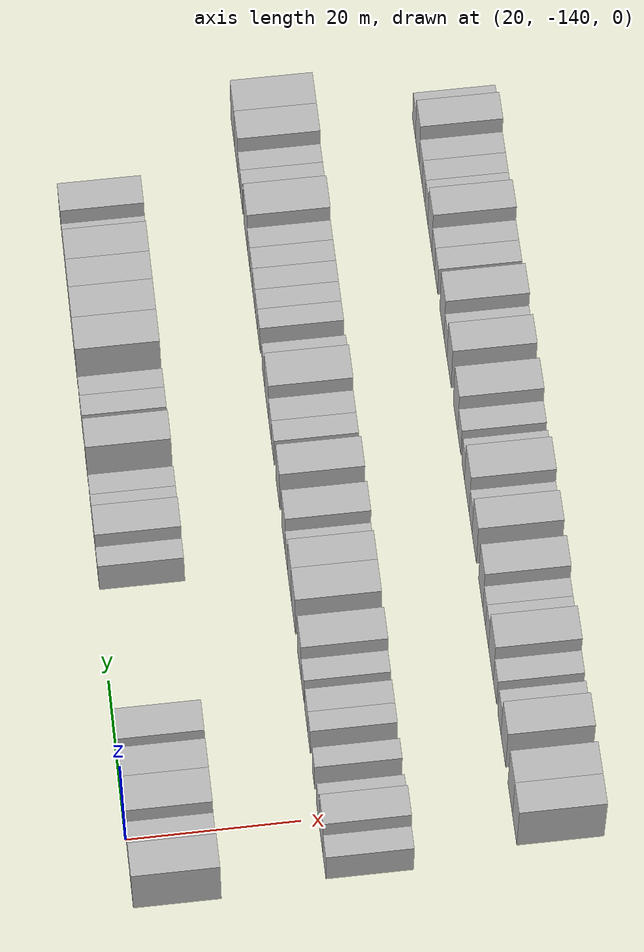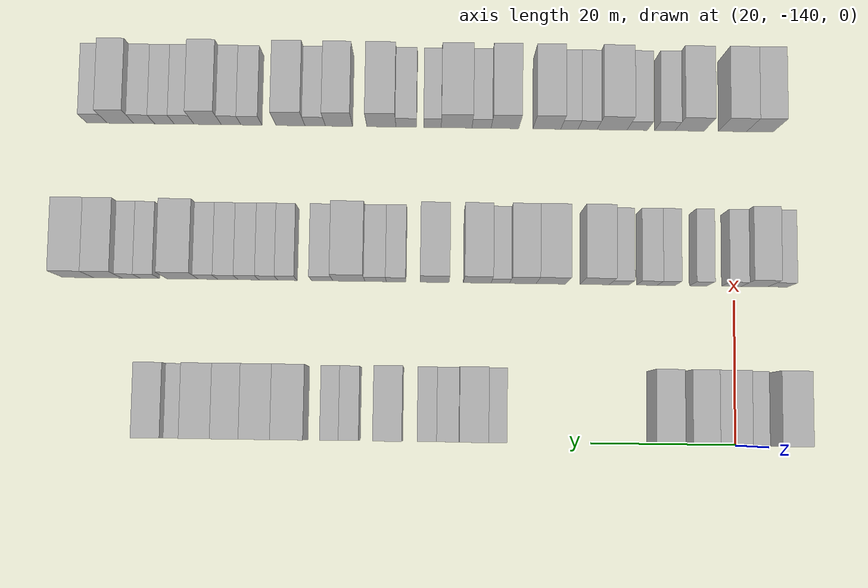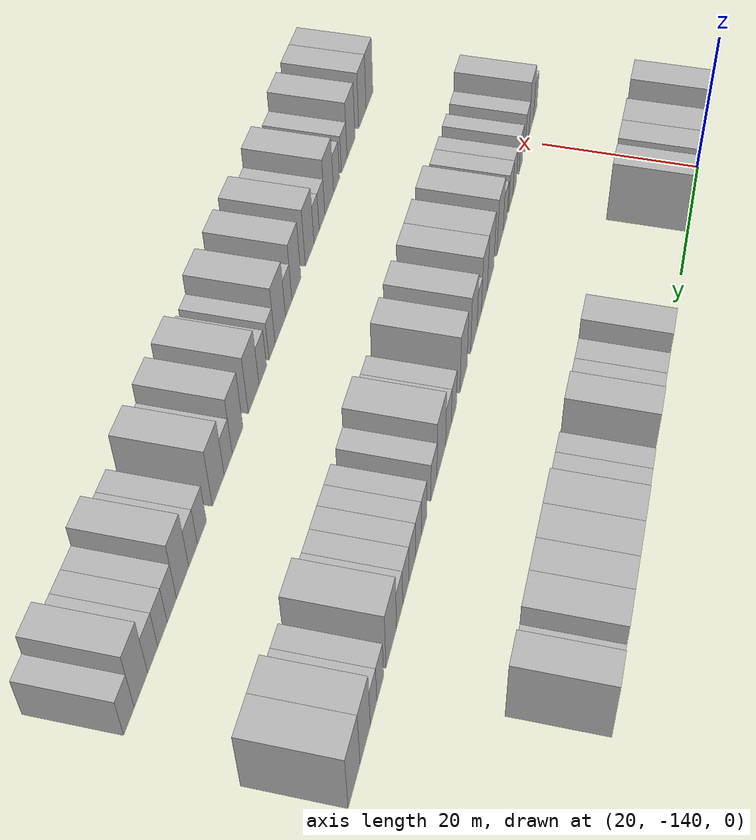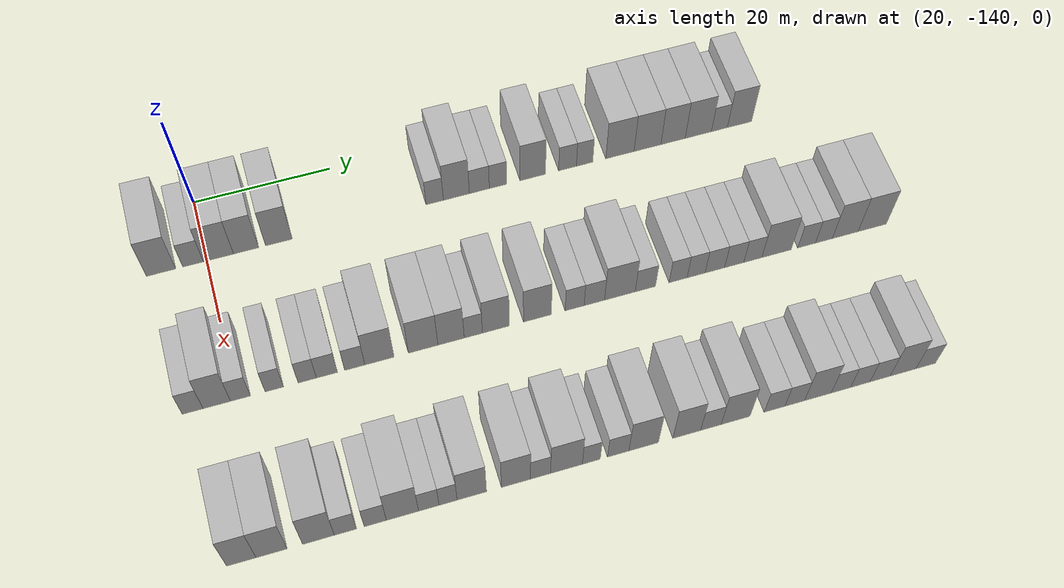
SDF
<sdf version="1.6">
 <world name="default">
  <model name="building_19">
   <static>1</static>
   <pose>25.0000 -146.4333 0 0.000000 0.000000 0.000000</pose>
   <link name="link">
    <pose>0 0 4.50 0 0 0</pose>
    <collision name="collision"><geometry><box><size>10.0000 4.1282 9.0000</size></box></geometry></collision>
    <visual name="visual">
     <cast_shadows>0</cast_shadows>
     <geometry><box><size>10.0000 4.1282 9.0000</size></box></geometry>
     <material>
      <script>
       <uri>model://HANNAS_wall/materials/scripts</uri>
       <uri>model://HANNAS_wall/materials/textures</uri>
       <name>vrc/HANNAS_wall</name>
      </script>
     </material>
    </visual>
   </link>
  </model>
  <model name="building_20">
   <static>1</static>
   <pose>25.0000 -141.9119 0 0.000000 0.000000 0.000000</pose>
   <link name="link">
    <pose>0 0 3.00 0 0 0</pose>
    <collision name="collision"><geometry><box><size>10.0000 2.9148 6.0000</size></box></geometry></collision>
    <visual name="visual">
     <cast_shadows>0</cast_shadows>
     <geometry><box><size>10.0000 2.9148 6.0000</size></box></geometry>
     <material>
      <script>
       <uri>model://HANNAS_wall/materials/scripts</uri>
       <uri>model://HANNAS_wall/materials/textures</uri>
       <name>vrc/HANNAS_wall</name>
      </script>
     </material>
    </visual>
   </link>
  </model>
  <model name="building_21">
   <static>1</static>
   <pose>25.0000 -138.3093 0 0.000000 0.000000 0.000000</pose>
   <link name="link">
    <pose>0 0 4.50 0 0 0</pose>
    <collision name="collision"><geometry><box><size>10.0000 4.2903 9.0000</size></box></geometry></collision>
    <visual name="visual">
     <cast_shadows>0</cast_shadows>
     <geometry><box><size>10.0000 4.2903 9.0000</size></box></geometry>
     <material>
      <script>
       <uri>model://HANNAS_wall/materials/scripts</uri>
       <uri>model://HANNAS_wall/materials/textures</uri>
       <name>vrc/HANNAS_wall</name>
      </script>
     </material>
    </visual>
   </link>
  </model>
  <model name="building_22">
   <static>1</static>
   <pose>25.0000 -134.3627 0 0.000000 0.000000 0.000000</pose>
   <link name="link">
    <pose>0 0 4.50 0 0 0</pose>
    <collision name="collision"><geometry><box><size>10.0000 3.6030 9.0000</size></box></geometry></collision>
    <visual name="visual">
     <cast_shadows>0</cast_shadows>
     <geometry><box><size>10.0000 3.6030 9.0000</size></box></geometry>
     <material>
      <script>
       <uri>model://HANNAS_wall/materials/scripts</uri>
       <uri>model://HANNAS_wall/materials/textures</uri>
       <name>vrc/HANNAS_wall</name>
      </script>
     </material>
    </visual>
   </link>
  </model>
  <model name="building_23">
   <static>1</static>
   <pose>25.0000 -129.6482 0 0.000000 0.000000 0.000000</pose>
   <link name="link">
    <pose>0 0 4.50 0 0 0</pose>
    <collision name="collision"><geometry><box><size>10.0000 3.8260 9.0000</size></box></geometry></collision>
    <visual name="visual">
     <cast_shadows>0</cast_shadows>
     <geometry><box><size>10.0000 3.8260 9.0000</size></box></geometry>
     <material>
      <script>
       <uri>model://HANNAS_wall/materials/scripts</uri>
       <uri>model://HANNAS_wall/materials/textures</uri>
       <name>vrc/HANNAS_wall</name>
      </script>
     </material>
    </visual>
   </link>
  </model>
  <model name="building_24">
   <static>1</static>
   <pose>25.0000 -106.8678 0 0.000000 0.000000 0.000000</pose>
   <link name="link">
    <pose>0 0 3.00 0 0 0</pose>
    <collision name="collision"><geometry><box><size>10.0000 2.5782 6.0000</size></box></geometry></collision>
    <visual name="visual">
     <cast_shadows>0</cast_shadows>
     <geometry><box><size>10.0000 2.5782 6.0000</size></box></geometry>
     <material>
      <script>
       <uri>model://HANNAS_wall/materials/scripts</uri>
       <uri>model://HANNAS_wall/materials/textures</uri>
       <name>vrc/HANNAS_wall</name>
      </script>
     </material>
    </visual>
   </link>
  </model>
  <model name="building_25">
   <static>1</static>
   <pose>25.0000 -103.6385 0 0.000000 0.000000 0.000000</pose>
   <link name="link">
    <pose>0 0 4.50 0 0 0</pose>
    <collision name="collision"><geometry><box><size>10.0000 3.8804 9.0000</size></box></geometry></collision>
    <visual name="visual">
     <cast_shadows>0</cast_shadows>
     <geometry><box><size>10.0000 3.8804 9.0000</size></box></geometry>
     <material>
      <script>
       <uri>model://HANNAS_wall/materials/scripts</uri>
       <uri>model://HANNAS_wall/materials/textures</uri>
       <name>vrc/HANNAS_wall</name>
      </script>
     </material>
    </visual>
   </link>
  </model>
  <model name="building_26">
   <static>1</static>
   <pose>25.0000 -100.2035 0 0.000000 0.000000 0.000000</pose>
   <link name="link">
    <pose>0 0 3.00 0 0 0</pose>
    <collision name="collision"><geometry><box><size>10.0000 2.9895 6.0000</size></box></geometry></collision>
    <visual name="visual">
     <cast_shadows>0</cast_shadows>
     <geometry><box><size>10.0000 2.9895 6.0000</size></box></geometry>
     <material>
      <script>
       <uri>model://HANNAS_wall/materials/scripts</uri>
       <uri>model://HANNAS_wall/materials/textures</uri>
       <name>vrc/HANNAS_wall</name>
      </script>
     </material>
    </visual>
   </link>
  </model>
  <model name="building_27">
   <static>1</static>
   <pose>25.0000 -97.4004 0 0.000000 0.000000 0.000000</pose>
   <link name="link">
    <pose>0 0 3.00 0 0 0</pose>
    <collision name="collision"><geometry><box><size>10.0000 2.6168 6.0000</size></box></geometry></collision>
    <visual name="visual">
     <cast_shadows>0</cast_shadows>
     <geometry><box><size>10.0000 2.6168 6.0000</size></box></geometry>
     <material>
      <script>
       <uri>model://HANNAS_wall/materials/scripts</uri>
       <uri>model://HANNAS_wall/materials/textures</uri>
       <name>vrc/HANNAS_wall</name>
      </script>
     </material>
    </visual>
   </link>
  </model>
  <model name="building_28">
   <static>1</static>
   <pose>25.0000 -92.1658 0 0.000000 0.000000 0.000000</pose>
   <link name="link">
    <pose>0 0 4.50 0 0 0</pose>
    <collision name="collision"><geometry><box><size>10.0000 3.8523 9.0000</size></box></geometry></collision>
    <visual name="visual">
     <cast_shadows>0</cast_shadows>
     <geometry><box><size>10.0000 3.8523 9.0000</size></box></geometry>
     <material>
      <script>
       <uri>model://HANNAS_wall/materials/scripts</uri>
       <uri>model://HANNAS_wall/materials/textures</uri>
       <name>vrc/HANNAS_wall</name>
      </script>
     </material>
    </visual>
   </link>
  </model>
  <model name="building_29">
   <static>1</static>
   <pose>25.0000 -86.8846 0 0.000000 0.000000 0.000000</pose>
   <link name="link">
    <pose>0 0 3.00 0 0 0</pose>
    <collision name="collision"><geometry><box><size>10.0000 2.7101 6.0000</size></box></geometry></collision>
    <visual name="visual">
     <cast_shadows>0</cast_shadows>
     <geometry><box><size>10.0000 2.7101 6.0000</size></box></geometry>
     <material>
      <script>
       <uri>model://HANNAS_wall/materials/scripts</uri>
       <uri>model://HANNAS_wall/materials/textures</uri>
       <name>vrc/HANNAS_wall</name>
      </script>
     </material>
    </visual>
   </link>
  </model>
  <model name="building_30">
   <static>1</static>
   <pose>25.0000 -84.2766 0 0.000000 0.000000 0.000000</pose>
   <link name="link">
    <pose>0 0 3.00 0 0 0</pose>
    <collision name="collision"><geometry><box><size>10.0000 2.5058 6.0000</size></box></geometry></collision>
    <visual name="visual">
     <cast_shadows>0</cast_shadows>
     <geometry><box><size>10.0000 2.5058 6.0000</size></box></geometry>
     <material>
      <script>
       <uri>model://HANNAS_wall/materials/scripts</uri>
       <uri>model://HANNAS_wall/materials/textures</uri>
       <name>vrc/HANNAS_wall</name>
      </script>
     </material>
    </visual>
   </link>
  </model>
  <model name="building_31">
   <static>1</static>
   <pose>25.0000 -78.8417 0 0.000000 0.000000 0.000000</pose>
   <link name="link">
    <pose>0 0 4.50 0 0 0</pose>
    <collision name="collision"><geometry><box><size>10.0000 4.3641 9.0000</size></box></geometry></collision>
    <visual name="visual">
     <cast_shadows>0</cast_shadows>
     <geometry><box><size>10.0000 4.3641 9.0000</size></box></geometry>
     <material>
      <script>
       <uri>model://HANNAS_wall/materials/scripts</uri>
       <uri>model://HANNAS_wall/materials/textures</uri>
       <name>vrc/HANNAS_wall</name>
      </script>
     </material>
    </visual>
   </link>
  </model>
  <model name="building_32">
   <static>1</static>
   <pose>25.0000 -74.5840 0 0.000000 0.000000 0.000000</pose>
   <link name="link">
    <pose>0 0 4.50 0 0 0</pose>
    <collision name="collision"><geometry><box><size>10.0000 4.1513 9.0000</size></box></geometry></collision>
    <visual name="visual">
     <cast_shadows>0</cast_shadows>
     <geometry><box><size>10.0000 4.1513 9.0000</size></box></geometry>
     <material>
      <script>
       <uri>model://HANNAS_wall/materials/scripts</uri>
       <uri>model://HANNAS_wall/materials/textures</uri>
       <name>vrc/HANNAS_wall</name>
      </script>
     </material>
    </visual>
   </link>
  </model>
  <model name="building_33">
   <static>1</static>
   <pose>25.0000 -70.6156 0 0.000000 0.000000 0.000000</pose>
   <link name="link">
    <pose>0 0 4.50 0 0 0</pose>
    <collision name="collision"><geometry><box><size>10.0000 3.7857 9.0000</size></box></geometry></collision>
    <visual name="visual">
     <cast_shadows>0</cast_shadows>
     <geometry><box><size>10.0000 3.7857 9.0000</size></box></geometry>
     <material>
      <script>
       <uri>model://HANNAS_wall/materials/scripts</uri>
       <uri>model://HANNAS_wall/materials/textures</uri>
       <name>vrc/HANNAS_wall</name>
      </script>
     </material>
    </visual>
   </link>
  </model>
  <model name="building_34">
   <static>1</static>
   <pose>25.0000 -66.6662 0 0.000000 0.000000 0.000000</pose>
   <link name="link">
    <pose>0 0 4.50 0 0 0</pose>
    <collision name="collision"><geometry><box><size>10.0000 4.1130 9.0000</size></box></geometry></collision>
    <visual name="visual">
     <cast_shadows>0</cast_shadows>
     <geometry><box><size>10.0000 4.1130 9.0000</size></box></geometry>
     <material>
      <script>
       <uri>model://HANNAS_wall/materials/scripts</uri>
       <uri>model://HANNAS_wall/materials/textures</uri>
       <name>vrc/HANNAS_wall</name>
      </script>
     </material>
    </visual>
   </link>
  </model>
  <model name="building_35">
   <static>1</static>
   <pose>25.0000 -63.3535 0 0.000000 0.000000 0.000000</pose>
   <link name="link">
    <pose>0 0 3.00 0 0 0</pose>
    <collision name="collision"><geometry><box><size>10.0000 2.5124 6.0000</size></box></geometry></collision>
    <visual name="visual">
     <cast_shadows>0</cast_shadows>
     <geometry><box><size>10.0000 2.5124 6.0000</size></box></geometry>
     <material>
      <script>
       <uri>model://HANNAS_wall/materials/scripts</uri>
       <uri>model://HANNAS_wall/materials/textures</uri>
       <name>vrc/HANNAS_wall</name>
      </script>
     </material>
    </visual>
   </link>
  </model>
  <model name="building_36">
   <static>1</static>
   <pose>25.0000 -60.1844 0 0.000000 0.000000 0.000000</pose>
   <link name="link">
    <pose>0 0 4.50 0 0 0</pose>
    <collision name="collision"><geometry><box><size>10.0000 3.8257 9.0000</size></box></geometry></collision>
    <visual name="visual">
     <cast_shadows>0</cast_shadows>
     <geometry><box><size>10.0000 3.8257 9.0000</size></box></geometry>
     <material>
      <script>
       <uri>model://HANNAS_wall/materials/scripts</uri>
       <uri>model://HANNAS_wall/materials/textures</uri>
       <name>vrc/HANNAS_wall</name>
      </script>
     </material>
    </visual>
   </link>
  </model>
  <model name="building_135">
   <static>1</static>
   <pose>47.0000 -146.0430 0 0.000000 0.000000 0.000000</pose>
   <link name="link">
    <pose>0 0 3.00 0 0 0</pose>
    <collision name="collision"><geometry><box><size>10.0000 2.7919 6.0000</size></box></geometry></collision>
    <visual name="visual">
     <cast_shadows>0</cast_shadows>
     <geometry><box><size>10.0000 2.7919 6.0000</size></box></geometry>
     <material>
      <script>
       <uri>model://HANNAS_wall/materials/scripts</uri>
       <uri>model://HANNAS_wall/materials/textures</uri>
       <name>vrc/HANNAS_wall</name>
      </script>
     </material>
    </visual>
   </link>
  </model>
  <model name="building_136">
   <static>1</static>
   <pose>47.0000 -142.7923 0 0.000000 0.000000 0.000000</pose>
   <link name="link">
    <pose>0 0 4.50 0 0 0</pose>
    <collision name="collision"><geometry><box><size>10.0000 3.7096 9.0000</size></box></geometry></collision>
    <visual name="visual">
     <cast_shadows>0</cast_shadows>
     <geometry><box><size>10.0000 3.7096 9.0000</size></box></geometry>
     <material>
      <script>
       <uri>model://HANNAS_wall/materials/scripts</uri>
       <uri>model://HANNAS_wall/materials/textures</uri>
       <name>vrc/HANNAS_wall</name>
      </script>
     </material>
    </visual>
   </link>
  </model>
  <model name="building_137">
   <static>1</static>
   <pose>47.0000 -139.5924 0 0.000000 0.000000 0.000000</pose>
   <link name="link">
    <pose>0 0 3.00 0 0 0</pose>
    <collision name="collision"><geometry><box><size>10.0000 2.6901 6.0000</size></box></geometry></collision>
    <visual name="visual">
     <cast_shadows>0</cast_shadows>
     <geometry><box><size>10.0000 2.6901 6.0000</size></box></geometry>
     <material>
      <script>
       <uri>model://HANNAS_wall/materials/scripts</uri>
       <uri>model://HANNAS_wall/materials/textures</uri>
       <name>vrc/HANNAS_wall</name>
      </script>
     </material>
    </visual>
   </link>
  </model>
  <model name="building_138">
   <static>1</static>
   <pose>47.0000 -134.9965 0 0.000000 0.000000 0.000000</pose>
   <link name="link">
    <pose>0 0 3.00 0 0 0</pose>
    <collision name="collision"><geometry><box><size>10.0000 2.5017 6.0000</size></box></geometry></collision>
    <visual name="visual">
     <cast_shadows>0</cast_shadows>
     <geometry><box><size>10.0000 2.5017 6.0000</size></box></geometry>
     <material>
      <script>
       <uri>model://HANNAS_wall/materials/scripts</uri>
       <uri>model://HANNAS_wall/materials/textures</uri>
       <name>vrc/HANNAS_wall</name>
      </script>
     </material>
    </visual>
   </link>
  </model>
  <model name="building_139">
   <static>1</static>
   <pose>47.0000 -130.4935 0 0.000000 0.000000 0.000000</pose>
   <link name="link">
    <pose>0 0 3.00 0 0 0</pose>
    <collision name="collision"><geometry><box><size>10.0000 2.5043 6.0000</size></box></geometry></collision>
    <visual name="visual">
     <cast_shadows>0</cast_shadows>
     <geometry><box><size>10.0000 2.5043 6.0000</size></box></geometry>
     <material>
      <script>
       <uri>model://HANNAS_wall/materials/scripts</uri>
       <uri>model://HANNAS_wall/materials/textures</uri>
       <name>vrc/HANNAS_wall</name>
      </script>
     </material>
    </visual>
   </link>
  </model>
  <model name="building_140">
   <static>1</static>
   <pose>47.0000 -127.7933 0 0.000000 0.000000 0.000000</pose>
   <link name="link">
    <pose>0 0 3.00 0 0 0</pose>
    <collision name="collision"><geometry><box><size>10.0000 2.8963 6.0000</size></box></geometry></collision>
    <visual name="visual">
     <cast_shadows>0</cast_shadows>
     <geometry><box><size>10.0000 2.8963 6.0000</size></box></geometry>
     <material>
      <script>
       <uri>model://HANNAS_wall/materials/scripts</uri>
       <uri>model://HANNAS_wall/materials/textures</uri>
       <name>vrc/HANNAS_wall</name>
      </script>
     </material>
    </visual>
   </link>
  </model>
  <model name="building_141">
   <static>1</static>
   <pose>47.0000 -123.9519 0 0.000000 0.000000 0.000000</pose>
   <link name="link">
    <pose>0 0 3.00 0 0 0</pose>
    <collision name="collision"><geometry><box><size>10.0000 2.7865 6.0000</size></box></geometry></collision>
    <visual name="visual">
     <cast_shadows>0</cast_shadows>
     <geometry><box><size>10.0000 2.7865 6.0000</size></box></geometry>
     <material>
      <script>
       <uri>model://HANNAS_wall/materials/scripts</uri>
       <uri>model://HANNAS_wall/materials/textures</uri>
       <name>vrc/HANNAS_wall</name>
      </script>
     </material>
    </visual>
   </link>
  </model>
  <model name="building_142">
   <static>1</static>
   <pose>47.0000 -120.5244 0 0.000000 0.000000 0.000000</pose>
   <link name="link">
    <pose>0 0 4.50 0 0 0</pose>
    <collision name="collision"><geometry><box><size>10.0000 4.0685 9.0000</size></box></geometry></collision>
    <visual name="visual">
     <cast_shadows>0</cast_shadows>
     <geometry><box><size>10.0000 4.0685 9.0000</size></box></geometry>
     <material>
      <script>
       <uri>model://HANNAS_wall/materials/scripts</uri>
       <uri>model://HANNAS_wall/materials/textures</uri>
       <name>vrc/HANNAS_wall</name>
      </script>
     </material>
    </visual>
   </link>
  </model>
  <model name="building_143">
   <static>1</static>
   <pose>47.0000 -114.4182 0 0.000000 0.000000 0.000000</pose>
   <link name="link">
    <pose>0 0 4.50 0 0 0</pose>
    <collision name="collision"><geometry><box><size>10.0000 4.1437 9.0000</size></box></geometry></collision>
    <visual name="visual">
     <cast_shadows>0</cast_shadows>
     <geometry><box><size>10.0000 4.1437 9.0000</size></box></geometry>
     <material>
      <script>
       <uri>model://HANNAS_wall/materials/scripts</uri>
       <uri>model://HANNAS_wall/materials/textures</uri>
       <name>vrc/HANNAS_wall</name>
      </script>
     </material>
    </visual>
   </link>
  </model>
  <model name="building_144">
   <static>1</static>
   <pose>47.0000 -110.4852 0 0.000000 0.000000 0.000000</pose>
   <link name="link">
    <pose>0 0 4.50 0 0 0</pose>
    <collision name="collision"><geometry><box><size>10.0000 3.7225 9.0000</size></box></geometry></collision>
    <visual name="visual">
     <cast_shadows>0</cast_shadows>
     <geometry><box><size>10.0000 3.7225 9.0000</size></box></geometry>
     <material>
      <script>
       <uri>model://HANNAS_wall/materials/scripts</uri>
       <uri>model://HANNAS_wall/materials/textures</uri>
       <name>vrc/HANNAS_wall</name>
      </script>
     </material>
    </visual>
   </link>
  </model>
  <model name="building_145">
   <static>1</static>
   <pose>47.0000 -107.3381 0 0.000000 0.000000 0.000000</pose>
   <link name="link">
    <pose>0 0 3.00 0 0 0</pose>
    <collision name="collision"><geometry><box><size>10.0000 2.5717 6.0000</size></box></geometry></collision>
    <visual name="visual">
     <cast_shadows>0</cast_shadows>
     <geometry><box><size>10.0000 2.5717 6.0000</size></box></geometry>
     <material>
      <script>
       <uri>model://HANNAS_wall/materials/scripts</uri>
       <uri>model://HANNAS_wall/materials/textures</uri>
       <name>vrc/HANNAS_wall</name>
      </script>
     </material>
    </visual>
   </link>
  </model>
  <model name="building_146">
   <static>1</static>
   <pose>47.0000 -104.1316 0 0.000000 0.000000 0.000000</pose>
   <link name="link">
    <pose>0 0 4.50 0 0 0</pose>
    <collision name="collision"><geometry><box><size>10.0000 3.8413 9.0000</size></box></geometry></collision>
    <visual name="visual">
     <cast_shadows>0</cast_shadows>
     <geometry><box><size>10.0000 3.8413 9.0000</size></box></geometry>
     <material>
      <script>
       <uri>model://HANNAS_wall/materials/scripts</uri>
       <uri>model://HANNAS_wall/materials/textures</uri>
       <name>vrc/HANNAS_wall</name>
      </script>
     </material>
    </visual>
   </link>
  </model>
  <model name="building_147">
   <static>1</static>
   <pose>47.0000 -98.2140 0 0.000000 0.000000 0.000000</pose>
   <link name="link">
    <pose>0 0 4.50 0 0 0</pose>
    <collision name="collision"><geometry><box><size>10.0000 3.9939 9.0000</size></box></geometry></collision>
    <visual name="visual">
     <cast_shadows>0</cast_shadows>
     <geometry><box><size>10.0000 3.9939 9.0000</size></box></geometry>
     <material>
      <script>
       <uri>model://HANNAS_wall/materials/scripts</uri>
       <uri>model://HANNAS_wall/materials/textures</uri>
       <name>vrc/HANNAS_wall</name>
      </script>
     </material>
    </visual>
   </link>
  </model>
  <model name="building_148">
   <static>1</static>
   <pose>47.0000 -92.8414 0 0.000000 0.000000 0.000000</pose>
   <link name="link">
    <pose>0 0 3.00 0 0 0</pose>
    <collision name="collision"><geometry><box><size>10.0000 2.7513 6.0000</size></box></geometry></collision>
    <visual name="visual">
     <cast_shadows>0</cast_shadows>
     <geometry><box><size>10.0000 2.7513 6.0000</size></box></geometry>
     <material>
      <script>
       <uri>model://HANNAS_wall/materials/scripts</uri>
       <uri>model://HANNAS_wall/materials/textures</uri>
       <name>vrc/HANNAS_wall</name>
      </script>
     </material>
    </visual>
   </link>
  </model>
  <model name="building_149">
   <static>1</static>
   <pose>47.0000 -89.9779 0 0.000000 0.000000 0.000000</pose>
   <link name="link">
    <pose>0 0 3.00 0 0 0</pose>
    <collision name="collision"><geometry><box><size>10.0000 2.9758 6.0000</size></box></geometry></collision>
    <visual name="visual">
     <cast_shadows>0</cast_shadows>
     <geometry><box><size>10.0000 2.9758 6.0000</size></box></geometry>
     <material>
      <script>
       <uri>model://HANNAS_wall/materials/scripts</uri>
       <uri>model://HANNAS_wall/materials/textures</uri>
       <name>vrc/HANNAS_wall</name>
      </script>
     </material>
    </visual>
   </link>
  </model>
  <model name="building_150">
   <static>1</static>
   <pose>47.0000 -86.2541 0 0.000000 0.000000 0.000000</pose>
   <link name="link">
    <pose>0 0 4.50 0 0 0</pose>
    <collision name="collision"><geometry><box><size>10.0000 4.4717 9.0000</size></box></geometry></collision>
    <visual name="visual">
     <cast_shadows>0</cast_shadows>
     <geometry><box><size>10.0000 4.4717 9.0000</size></box></geometry>
     <material>
      <script>
       <uri>model://HANNAS_wall/materials/scripts</uri>
       <uri>model://HANNAS_wall/materials/textures</uri>
       <name>vrc/HANNAS_wall</name>
      </script>
     </material>
    </visual>
   </link>
  </model>
  <model name="building_151">
   <static>1</static>
   <pose>47.0000 -82.5287 0 0.000000 0.000000 0.000000</pose>
   <link name="link">
    <pose>0 0 3.00 0 0 0</pose>
    <collision name="collision"><geometry><box><size>10.0000 2.9792 6.0000</size></box></geometry></collision>
    <visual name="visual">
     <cast_shadows>0</cast_shadows>
     <geometry><box><size>10.0000 2.9792 6.0000</size></box></geometry>
     <material>
      <script>
       <uri>model://HANNAS_wall/materials/scripts</uri>
       <uri>model://HANNAS_wall/materials/textures</uri>
       <name>vrc/HANNAS_wall</name>
      </script>
     </material>
    </visual>
   </link>
  </model>
  <model name="building_152">
   <static>1</static>
   <pose>47.0000 -77.7086 0 0.000000 0.000000 0.000000</pose>
   <link name="link">
    <pose>0 0 3.00 0 0 0</pose>
    <collision name="collision"><geometry><box><size>10.0000 2.6610 6.0000</size></box></geometry></collision>
    <visual name="visual">
     <cast_shadows>0</cast_shadows>
     <geometry><box><size>10.0000 2.6610 6.0000</size></box></geometry>
     <material>
      <script>
       <uri>model://HANNAS_wall/materials/scripts</uri>
       <uri>model://HANNAS_wall/materials/textures</uri>
       <name>vrc/HANNAS_wall</name>
      </script>
     </material>
    </visual>
   </link>
  </model>
  <model name="building_153">
   <static>1</static>
   <pose>47.0000 -75.0412 0 0.000000 0.000000 0.000000</pose>
   <link name="link">
    <pose>0 0 3.00 0 0 0</pose>
    <collision name="collision"><geometry><box><size>10.0000 2.6737 6.0000</size></box></geometry></collision>
    <visual name="visual">
     <cast_shadows>0</cast_shadows>
     <geometry><box><size>10.0000 2.6737 6.0000</size></box></geometry>
     <material>
      <script>
       <uri>model://HANNAS_wall/materials/scripts</uri>
       <uri>model://HANNAS_wall/materials/textures</uri>
       <name>vrc/HANNAS_wall</name>
      </script>
     </material>
    </visual>
   </link>
  </model>
  <model name="building_154">
   <static>1</static>
   <pose>47.0000 -72.2574 0 0.000000 0.000000 0.000000</pose>
   <link name="link">
    <pose>0 0 3.00 0 0 0</pose>
    <collision name="collision"><geometry><box><size>10.0000 2.8939 6.0000</size></box></geometry></collision>
    <visual name="visual">
     <cast_shadows>0</cast_shadows>
     <geometry><box><size>10.0000 2.8939 6.0000</size></box></geometry>
     <material>
      <script>
       <uri>model://HANNAS_wall/materials/scripts</uri>
       <uri>model://HANNAS_wall/materials/textures</uri>
       <name>vrc/HANNAS_wall</name>
      </script>
     </material>
    </visual>
   </link>
  </model>
  <model name="building_155">
   <static>1</static>
   <pose>47.0000 -69.3821 0 0.000000 0.000000 0.000000</pose>
   <link name="link">
    <pose>0 0 3.00 0 0 0</pose>
    <collision name="collision"><geometry><box><size>10.0000 2.8566 6.0000</size></box></geometry></collision>
    <visual name="visual">
     <cast_shadows>0</cast_shadows>
     <geometry><box><size>10.0000 2.8566 6.0000</size></box></geometry>
     <material>
      <script>
       <uri>model://HANNAS_wall/materials/scripts</uri>
       <uri>model://HANNAS_wall/materials/textures</uri>
       <name>vrc/HANNAS_wall</name>
      </script>
     </material>
    </visual>
   </link>
  </model>
  <model name="building_156">
   <static>1</static>
   <pose>47.0000 -66.5951 0 0.000000 0.000000 0.000000</pose>
   <link name="link">
    <pose>0 0 3.00 0 0 0</pose>
    <collision name="collision"><geometry><box><size>10.0000 2.7175 6.0000</size></box></geometry></collision>
    <visual name="visual">
     <cast_shadows>0</cast_shadows>
     <geometry><box><size>10.0000 2.7175 6.0000</size></box></geometry>
     <material>
      <script>
       <uri>model://HANNAS_wall/materials/scripts</uri>
       <uri>model://HANNAS_wall/materials/textures</uri>
       <name>vrc/HANNAS_wall</name>
      </script>
     </material>
    </visual>
   </link>
  </model>
  <model name="building_157">
   <static>1</static>
   <pose>47.0000 -63.0223 0 0.000000 0.000000 0.000000</pose>
   <link name="link">
    <pose>0 0 4.50 0 0 0</pose>
    <collision name="collision"><geometry><box><size>10.0000 4.4281 9.0000</size></box></geometry></collision>
    <visual name="visual">
     <cast_shadows>0</cast_shadows>
     <geometry><box><size>10.0000 4.4281 9.0000</size></box></geometry>
     <material>
      <script>
       <uri>model://HANNAS_wall/materials/scripts</uri>
       <uri>model://HANNAS_wall/materials/textures</uri>
       <name>vrc/HANNAS_wall</name>
      </script>
     </material>
    </visual>
   </link>
  </model>
  <model name="building_158">
   <static>1</static>
   <pose>47.0000 -58.4649 0 0.000000 0.000000 0.000000</pose>
   <link name="link">
    <pose>0 0 3.00 0 0 0</pose>
    <collision name="collision"><geometry><box><size>10.0000 2.6866 6.0000</size></box></geometry></collision>
    <visual name="visual">
     <cast_shadows>0</cast_shadows>
     <geometry><box><size>10.0000 2.6866 6.0000</size></box></geometry>
     <material>
      <script>
       <uri>model://HANNAS_wall/materials/scripts</uri>
       <uri>model://HANNAS_wall/materials/textures</uri>
       <name>vrc/HANNAS_wall</name>
      </script>
     </material>
    </visual>
   </link>
  </model>
  <model name="building_159">
   <static>1</static>
   <pose>47.0000 -55.8376 0 0.000000 0.000000 0.000000</pose>
   <link name="link">
    <pose>0 0 3.00 0 0 0</pose>
    <collision name="collision"><geometry><box><size>10.0000 2.5680 6.0000</size></box></geometry></collision>
    <visual name="visual">
     <cast_shadows>0</cast_shadows>
     <geometry><box><size>10.0000 2.5680 6.0000</size></box></geometry>
     <material>
      <script>
       <uri>model://HANNAS_wall/materials/scripts</uri>
       <uri>model://HANNAS_wall/materials/textures</uri>
       <name>vrc/HANNAS_wall</name>
      </script>
     </material>
    </visual>
   </link>
  </model>
  <model name="building_160">
   <static>1</static>
   <pose>47.0000 -52.5850 0 0.000000 0.000000 0.000000</pose>
   <link name="link">
    <pose>0 0 4.50 0 0 0</pose>
    <collision name="collision"><geometry><box><size>10.0000 3.9374 9.0000</size></box></geometry></collision>
    <visual name="visual">
     <cast_shadows>0</cast_shadows>
     <geometry><box><size>10.0000 3.9374 9.0000</size></box></geometry>
     <material>
      <script>
       <uri>model://HANNAS_wall/materials/scripts</uri>
       <uri>model://HANNAS_wall/materials/textures</uri>
       <name>vrc/HANNAS_wall</name>
      </script>
     </material>
    </visual>
   </link>
  </model>
  <model name="building_161">
   <static>1</static>
   <pose>47.0000 -48.4366 0 0.000000 0.000000 0.000000</pose>
   <link name="link">
    <pose>0 0 4.50 0 0 0</pose>
    <collision name="collision"><geometry><box><size>10.0000 4.3593 9.0000</size></box></geometry></collision>
    <visual name="visual">
     <cast_shadows>0</cast_shadows>
     <geometry><box><size>10.0000 4.3593 9.0000</size></box></geometry>
     <material>
      <script>
       <uri>model://HANNAS_wall/materials/scripts</uri>
       <uri>model://HANNAS_wall/materials/textures</uri>
       <name>vrc/HANNAS_wall</name>
      </script>
     </material>
    </visual>
   </link>
  </model>
  <model name="building_261">
   <static>1</static>
   <pose>69.0000 -143.9091 0 0.000000 0.000000 0.000000</pose>
   <link name="link">
    <pose>0 0 4.50 0 0 0</pose>
    <collision name="collision"><geometry><box><size>10.0000 3.7634 9.0000</size></box></geometry></collision>
    <visual name="visual">
     <cast_shadows>0</cast_shadows>
     <geometry><box><size>10.0000 3.7634 9.0000</size></box></geometry>
     <material>
      <script>
       <uri>model://HANNAS_wall/materials/scripts</uri>
       <uri>model://HANNAS_wall/materials/textures</uri>
       <name>vrc/HANNAS_wall</name>
      </script>
     </material>
    </visual>
   </link>
  </model>
  <model name="building_262">
   <static>1</static>
   <pose>69.0000 -140.0326 0 0.000000 0.000000 0.000000</pose>
   <link name="link">
    <pose>0 0 4.50 0 0 0</pose>
    <collision name="collision"><geometry><box><size>10.0000 3.9897 9.0000</size></box></geometry></collision>
    <visual name="visual">
     <cast_shadows>0</cast_shadows>
     <geometry><box><size>10.0000 3.9897 9.0000</size></box></geometry>
     <material>
      <script>
       <uri>model://HANNAS_wall/materials/scripts</uri>
       <uri>model://HANNAS_wall/materials/textures</uri>
       <name>vrc/HANNAS_wall</name>
      </script>
     </material>
    </visual>
   </link>
  </model>
  <model name="building_263">
   <static>1</static>
   <pose>69.0000 -133.9704 0 0.000000 0.000000 0.000000</pose>
   <link name="link">
    <pose>0 0 4.50 0 0 0</pose>
    <collision name="collision"><geometry><box><size>10.0000 4.1348 9.0000</size></box></geometry></collision>
    <visual name="visual">
     <cast_shadows>0</cast_shadows>
     <geometry><box><size>10.0000 4.1348 9.0000</size></box></geometry>
     <material>
      <script>
       <uri>model://HANNAS_wall/materials/scripts</uri>
       <uri>model://HANNAS_wall/materials/textures</uri>
       <name>vrc/HANNAS_wall</name>
      </script>
     </material>
    </visual>
   </link>
  </model>
  <model name="building_264">
   <static>1</static>
   <pose>69.0000 -130.4592 0 0.000000 0.000000 0.000000</pose>
   <link name="link">
    <pose>0 0 3.00 0 0 0</pose>
    <collision name="collision"><geometry><box><size>10.0000 2.8876 6.0000</size></box></geometry></collision>
    <visual name="visual">
     <cast_shadows>0</cast_shadows>
     <geometry><box><size>10.0000 2.8876 6.0000</size></box></geometry>
     <material>
      <script>
       <uri>model://HANNAS_wall/materials/scripts</uri>
       <uri>model://HANNAS_wall/materials/textures</uri>
       <name>vrc/HANNAS_wall</name>
      </script>
     </material>
    </visual>
   </link>
  </model>
  <model name="building_265">
   <static>1</static>
   <pose>69.0000 -126.5624 0 0.000000 0.000000 0.000000</pose>
   <link name="link">
    <pose>0 0 3.00 0 0 0</pose>
    <collision name="collision"><geometry><box><size>10.0000 2.9060 6.0000</size></box></geometry></collision>
    <visual name="visual">
     <cast_shadows>0</cast_shadows>
     <geometry><box><size>10.0000 2.9060 6.0000</size></box></geometry>
     <material>
      <script>
       <uri>model://HANNAS_wall/materials/scripts</uri>
       <uri>model://HANNAS_wall/materials/textures</uri>
       <name>vrc/HANNAS_wall</name>
      </script>
     </material>
    </visual>
   </link>
  </model>
  <model name="building_266">
   <static>1</static>
   <pose>69.0000 -122.9863 0 0.000000 0.000000 0.000000</pose>
   <link name="link">
    <pose>0 0 4.50 0 0 0</pose>
    <collision name="collision"><geometry><box><size>10.0000 4.2462 9.0000</size></box></geometry></collision>
    <visual name="visual">
     <cast_shadows>0</cast_shadows>
     <geometry><box><size>10.0000 4.2462 9.0000</size></box></geometry>
     <material>
      <script>
       <uri>model://HANNAS_wall/materials/scripts</uri>
       <uri>model://HANNAS_wall/materials/textures</uri>
       <name>vrc/HANNAS_wall</name>
      </script>
     </material>
    </visual>
   </link>
  </model>
  <model name="building_267">
   <static>1</static>
   <pose>69.0000 -119.5031 0 0.000000 0.000000 0.000000</pose>
   <link name="link">
    <pose>0 0 3.00 0 0 0</pose>
    <collision name="collision"><geometry><box><size>10.0000 2.7203 6.0000</size></box></geometry></collision>
    <visual name="visual">
     <cast_shadows>0</cast_shadows>
     <geometry><box><size>10.0000 2.7203 6.0000</size></box></geometry>
     <material>
      <script>
       <uri>model://HANNAS_wall/materials/scripts</uri>
       <uri>model://HANNAS_wall/materials/textures</uri>
       <name>vrc/HANNAS_wall</name>
      </script>
     </material>
    </visual>
   </link>
  </model>
  <model name="building_268">
   <static>1</static>
   <pose>69.0000 -116.9396 0 0.000000 0.000000 0.000000</pose>
   <link name="link">
    <pose>0 0 3.00 0 0 0</pose>
    <collision name="collision"><geometry><box><size>10.0000 2.4068 6.0000</size></box></geometry></collision>
    <visual name="visual">
     <cast_shadows>0</cast_shadows>
     <geometry><box><size>10.0000 2.4068 6.0000</size></box></geometry>
     <material>
      <script>
       <uri>model://HANNAS_wall/materials/scripts</uri>
       <uri>model://HANNAS_wall/materials/textures</uri>
       <name>vrc/HANNAS_wall</name>
      </script>
     </material>
    </visual>
   </link>
  </model>
  <model name="building_269">
   <static>1</static>
   <pose>69.0000 -113.7687 0 0.000000 0.000000 0.000000</pose>
   <link name="link">
    <pose>0 0 4.50 0 0 0</pose>
    <collision name="collision"><geometry><box><size>10.0000 3.9351 9.0000</size></box></geometry></collision>
    <visual name="visual">
     <cast_shadows>0</cast_shadows>
     <geometry><box><size>10.0000 3.9351 9.0000</size></box></geometry>
     <material>
      <script>
       <uri>model://HANNAS_wall/materials/scripts</uri>
       <uri>model://HANNAS_wall/materials/textures</uri>
       <name>vrc/HANNAS_wall</name>
      </script>
     </material>
    </visual>
   </link>
  </model>
  <model name="building_270">
   <static>1</static>
   <pose>69.0000 -107.8435 0 0.000000 0.000000 0.000000</pose>
   <link name="link">
    <pose>0 0 4.50 0 0 0</pose>
    <collision name="collision"><geometry><box><size>10.0000 3.9152 9.0000</size></box></geometry></collision>
    <visual name="visual">
     <cast_shadows>0</cast_shadows>
     <geometry><box><size>10.0000 3.9152 9.0000</size></box></geometry>
     <material>
      <script>
       <uri>model://HANNAS_wall/materials/scripts</uri>
       <uri>model://HANNAS_wall/materials/textures</uri>
       <name>vrc/HANNAS_wall</name>
      </script>
     </material>
    </visual>
   </link>
  </model>
  <model name="building_271">
   <static>1</static>
   <pose>69.0000 -104.5299 0 0.000000 0.000000 0.000000</pose>
   <link name="link">
    <pose>0 0 3.00 0 0 0</pose>
    <collision name="collision"><geometry><box><size>10.0000 2.7121 6.0000</size></box></geometry></collision>
    <visual name="visual">
     <cast_shadows>0</cast_shadows>
     <geometry><box><size>10.0000 2.7121 6.0000</size></box></geometry>
     <material>
      <script>
       <uri>model://HANNAS_wall/materials/scripts</uri>
       <uri>model://HANNAS_wall/materials/textures</uri>
       <name>vrc/HANNAS_wall</name>
      </script>
     </material>
    </visual>
   </link>
  </model>
  <model name="building_272">
   <static>1</static>
   <pose>69.0000 -101.0026 0 0.000000 0.000000 0.000000</pose>
   <link name="link">
    <pose>0 0 4.50 0 0 0</pose>
    <collision name="collision"><geometry><box><size>10.0000 4.3423 9.0000</size></box></geometry></collision>
    <visual name="visual">
     <cast_shadows>0</cast_shadows>
     <geometry><box><size>10.0000 4.3423 9.0000</size></box></geometry>
     <material>
      <script>
       <uri>model://HANNAS_wall/materials/scripts</uri>
       <uri>model://HANNAS_wall/materials/textures</uri>
       <name>vrc/HANNAS_wall</name>
      </script>
     </material>
    </visual>
   </link>
  </model>
  <model name="building_273">
   <static>1</static>
   <pose>69.0000 -97.6032 0 0.000000 0.000000 0.000000</pose>
   <link name="link">
    <pose>0 0 3.00 0 0 0</pose>
    <collision name="collision"><geometry><box><size>10.0000 2.4566 6.0000</size></box></geometry></collision>
    <visual name="visual">
     <cast_shadows>0</cast_shadows>
     <geometry><box><size>10.0000 2.4566 6.0000</size></box></geometry>
     <material>
      <script>
       <uri>model://HANNAS_wall/materials/scripts</uri>
       <uri>model://HANNAS_wall/materials/textures</uri>
       <name>vrc/HANNAS_wall</name>
      </script>
     </material>
    </visual>
   </link>
  </model>
  <model name="building_274">
   <static>1</static>
   <pose>69.0000 -93.9067 0 0.000000 0.000000 0.000000</pose>
   <link name="link">
    <pose>0 0 3.00 0 0 0</pose>
    <collision name="collision"><geometry><box><size>10.0000 2.9365 6.0000</size></box></geometry></collision>
    <visual name="visual">
     <cast_shadows>0</cast_shadows>
     <geometry><box><size>10.0000 2.9365 6.0000</size></box></geometry>
     <material>
      <script>
       <uri>model://HANNAS_wall/materials/scripts</uri>
       <uri>model://HANNAS_wall/materials/textures</uri>
       <name>vrc/HANNAS_wall</name>
      </script>
     </material>
    </visual>
   </link>
  </model>
  <model name="building_275">
   <static>1</static>
   <pose>69.0000 -90.3841 0 0.000000 0.000000 0.000000</pose>
   <link name="link">
    <pose>0 0 4.50 0 0 0</pose>
    <collision name="collision"><geometry><box><size>10.0000 4.1088 9.0000</size></box></geometry></collision>
    <visual name="visual">
     <cast_shadows>0</cast_shadows>
     <geometry><box><size>10.0000 4.1088 9.0000</size></box></geometry>
     <material>
      <script>
       <uri>model://HANNAS_wall/materials/scripts</uri>
       <uri>model://HANNAS_wall/materials/textures</uri>
       <name>vrc/HANNAS_wall</name>
      </script>
     </material>
    </visual>
   </link>
  </model>
  <model name="building_276">
   <static>1</static>
   <pose>69.0000 -84.3919 0 0.000000 0.000000 0.000000</pose>
   <link name="link">
    <pose>0 0 4.50 0 0 0</pose>
    <collision name="collision"><geometry><box><size>10.0000 3.8756 9.0000</size></box></geometry></collision>
    <visual name="visual">
     <cast_shadows>0</cast_shadows>
     <geometry><box><size>10.0000 3.8756 9.0000</size></box></geometry>
     <material>
      <script>
       <uri>model://HANNAS_wall/materials/scripts</uri>
       <uri>model://HANNAS_wall/materials/textures</uri>
       <name>vrc/HANNAS_wall</name>
      </script>
     </material>
    </visual>
   </link>
  </model>
  <model name="building_277">
   <static>1</static>
   <pose>69.0000 -81.0119 0 0.000000 0.000000 0.000000</pose>
   <link name="link">
    <pose>0 0 3.00 0 0 0</pose>
    <collision name="collision"><geometry><box><size>10.0000 2.8842 6.0000</size></box></geometry></collision>
    <visual name="visual">
     <cast_shadows>0</cast_shadows>
     <geometry><box><size>10.0000 2.8842 6.0000</size></box></geometry>
     <material>
      <script>
       <uri>model://HANNAS_wall/materials/scripts</uri>
       <uri>model://HANNAS_wall/materials/textures</uri>
       <name>vrc/HANNAS_wall</name>
      </script>
     </material>
    </visual>
   </link>
  </model>
  <model name="building_278">
   <static>1</static>
   <pose>69.0000 -77.5268 0 0.000000 0.000000 0.000000</pose>
   <link name="link">
    <pose>0 0 4.50 0 0 0</pose>
    <collision name="collision"><geometry><box><size>10.0000 4.0862 9.0000</size></box></geometry></collision>
    <visual name="visual">
     <cast_shadows>0</cast_shadows>
     <geometry><box><size>10.0000 4.0862 9.0000</size></box></geometry>
     <material>
      <script>
       <uri>model://HANNAS_wall/materials/scripts</uri>
       <uri>model://HANNAS_wall/materials/textures</uri>
       <name>vrc/HANNAS_wall</name>
      </script>
     </material>
    </visual>
   </link>
  </model>
  <model name="building_279">
   <static>1</static>
   <pose>69.0000 -72.0068 0 0.000000 0.000000 0.000000</pose>
   <link name="link">
    <pose>0 0 3.00 0 0 0</pose>
    <collision name="collision"><geometry><box><size>10.0000 2.9537 6.0000</size></box></geometry></collision>
    <visual name="visual">
     <cast_shadows>0</cast_shadows>
     <geometry><box><size>10.0000 2.9537 6.0000</size></box></geometry>
     <material>
      <script>
       <uri>model://HANNAS_wall/materials/scripts</uri>
       <uri>model://HANNAS_wall/materials/textures</uri>
       <name>vrc/HANNAS_wall</name>
      </script>
     </material>
    </visual>
   </link>
  </model>
  <model name="building_280">
   <static>1</static>
   <pose>69.0000 -69.1354 0 0.000000 0.000000 0.000000</pose>
   <link name="link">
    <pose>0 0 3.00 0 0 0</pose>
    <collision name="collision"><geometry><box><size>10.0000 2.7890 6.0000</size></box></geometry></collision>
    <visual name="visual">
     <cast_shadows>0</cast_shadows>
     <geometry><box><size>10.0000 2.7890 6.0000</size></box></geometry>
     <material>
      <script>
       <uri>model://HANNAS_wall/materials/scripts</uri>
       <uri>model://HANNAS_wall/materials/textures</uri>
       <name>vrc/HANNAS_wall</name>
      </script>
     </material>
    </visual>
   </link>
  </model>
  <model name="building_281">
   <static>1</static>
   <pose>69.0000 -65.8214 0 0.000000 0.000000 0.000000</pose>
   <link name="link">
    <pose>0 0 4.50 0 0 0</pose>
    <collision name="collision"><geometry><box><size>10.0000 3.8390 9.0000</size></box></geometry></collision>
    <visual name="visual">
     <cast_shadows>0</cast_shadows>
     <geometry><box><size>10.0000 3.8390 9.0000</size></box></geometry>
     <material>
      <script>
       <uri>model://HANNAS_wall/materials/scripts</uri>
       <uri>model://HANNAS_wall/materials/textures</uri>
       <name>vrc/HANNAS_wall</name>
      </script>
     </material>
    </visual>
   </link>
  </model>
  <model name="building_282">
   <static>1</static>
   <pose>69.0000 -62.4953 0 0.000000 0.000000 0.000000</pose>
   <link name="link">
    <pose>0 0 3.00 0 0 0</pose>
    <collision name="collision"><geometry><box><size>10.0000 2.8133 6.0000</size></box></geometry></collision>
    <visual name="visual">
     <cast_shadows>0</cast_shadows>
     <geometry><box><size>10.0000 2.8133 6.0000</size></box></geometry>
     <material>
      <script>
       <uri>model://HANNAS_wall/materials/scripts</uri>
       <uri>model://HANNAS_wall/materials/textures</uri>
       <name>vrc/HANNAS_wall</name>
      </script>
     </material>
    </visual>
   </link>
  </model>
  <model name="building_283">
   <static>1</static>
   <pose>69.0000 -59.6959 0 0.000000 0.000000 0.000000</pose>
   <link name="link">
    <pose>0 0 3.00 0 0 0</pose>
    <collision name="collision"><geometry><box><size>10.0000 2.7855 6.0000</size></box></geometry></collision>
    <visual name="visual">
     <cast_shadows>0</cast_shadows>
     <geometry><box><size>10.0000 2.7855 6.0000</size></box></geometry>
     <material>
      <script>
       <uri>model://HANNAS_wall/materials/scripts</uri>
       <uri>model://HANNAS_wall/materials/textures</uri>
       <name>vrc/HANNAS_wall</name>
      </script>
     </material>
    </visual>
   </link>
  </model>
  <model name="building_284">
   <static>1</static>
   <pose>69.0000 -56.8374 0 0.000000 0.000000 0.000000</pose>
   <link name="link">
    <pose>0 0 3.00 0 0 0</pose>
    <collision name="collision"><geometry><box><size>10.0000 2.9315 6.0000</size></box></geometry></collision>
    <visual name="visual">
     <cast_shadows>0</cast_shadows>
     <geometry><box><size>10.0000 2.9315 6.0000</size></box></geometry>
     <material>
      <script>
       <uri>model://HANNAS_wall/materials/scripts</uri>
       <uri>model://HANNAS_wall/materials/textures</uri>
       <name>vrc/HANNAS_wall</name>
      </script>
     </material>
    </visual>
   </link>
  </model>
  <model name="building_285">
   <static>1</static>
   <pose>69.0000 -53.4896 0 0.000000 0.000000 0.000000</pose>
   <link name="link">
    <pose>0 0 4.50 0 0 0</pose>
    <collision name="collision"><geometry><box><size>10.0000 3.7639 9.0000</size></box></geometry></collision>
    <visual name="visual">
     <cast_shadows>0</cast_shadows>
     <geometry><box><size>10.0000 3.7639 9.0000</size></box></geometry>
     <material>
      <script>
       <uri>model://HANNAS_wall/materials/scripts</uri>
       <uri>model://HANNAS_wall/materials/textures</uri>
       <name>vrc/HANNAS_wall</name>
      </script>
     </material>
    </visual>
   </link>
  </model>
  <model name="building_286">
   <static>1</static>
   <pose>69.0000 -50.1627 0 0.000000 0.000000 0.000000</pose>
   <link name="link">
    <pose>0 0 3.00 0 0 0</pose>
    <collision name="collision"><geometry><box><size>10.0000 2.8900 6.0000</size></box></geometry></collision>
    <visual name="visual">
     <cast_shadows>0</cast_shadows>
     <geometry><box><size>10.0000 2.8900 6.0000</size></box></geometry>
     <material>
      <script>
       <uri>model://HANNAS_wall/materials/scripts</uri>
       <uri>model://HANNAS_wall/materials/textures</uri>
       <name>vrc/HANNAS_wall</name>
      </script>
     </material>
    </visual>
   </link>
  </model>
 </world>
</sdf>
